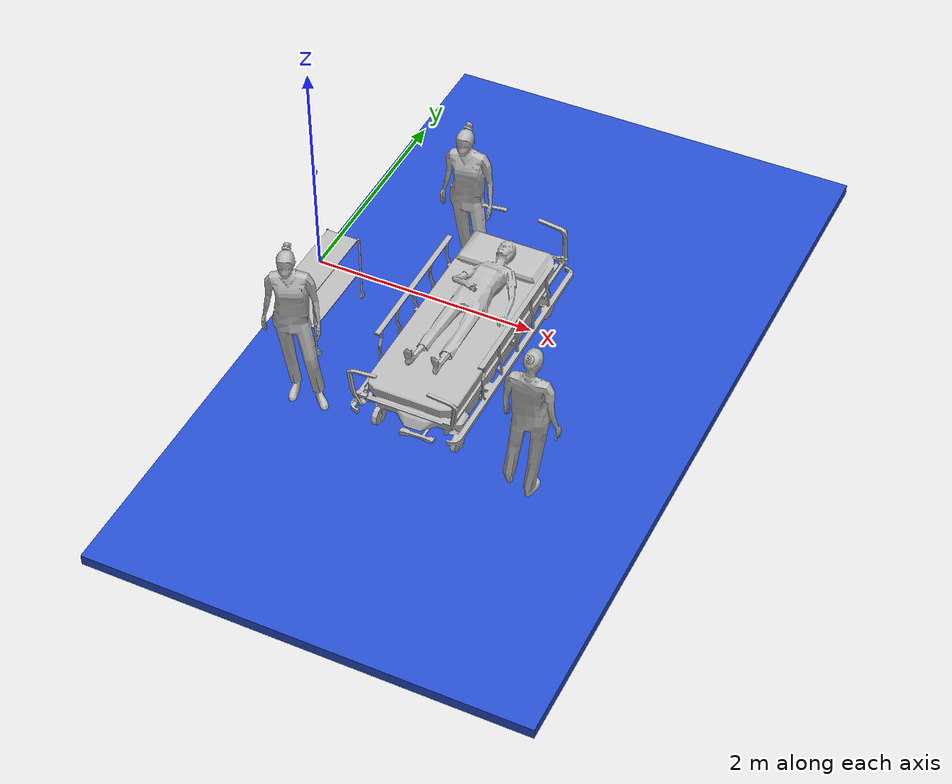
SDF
<sdf version="1.5">
 <world name="world">
  <gravity>0 0 -9.8</gravity>
  <physics name="default_physics" default="0" type="rk4">
   <max_step_size>0.001</max_step_size>
   <real_time_factor>1</real_time_factor>
   <real_time_update_rate>1000</real_time_update_rate>
   <ode>
    <solver>
     <type>quick</type>
     <precon>none</precon>
     <iters>50</iters>
     <sor>1.3</sor>
     <use_dynamic_moi_rescaling>0</use_dynamic_moi_rescaling>
     <friction_model>pyramid_model</friction_model>
     <constraints>
      <cfm>0.0</cfm>
      <erp>0.2</erp>
      <contact_max_correcting_vel>100.0</contact_max_correcting_vel>
      <contact_surface_layer>0.001</contact_surface_layer>
     </constraints>
     <solver>
      <type>quick</type>
      <precon>none</precon>
      <iters>50</iters>
      <sor>1.3</sor>
      <use_dynamic_moi_rescaling>0</use_dynamic_moi_rescaling>
      <friction_model>pyramid_model</friction_model>
      <constraints>
       <cfm>0.0</cfm>
       <erp>0.2</erp>
       <contact_max_correcting_vel>100.0</contact_max_correcting_vel>
       <contact_surface_layer>0.001</contact_surface_layer>
      </constraints>
     </solver>
     <solver_type>2</solver_type>
     <min_step_size>0.0001</min_step_size>
     <max_step_size>0.001</max_step_size>
     <step_size>0.001</step_size>
     <damping>1</damping>
     <implicit_spring_damper>0</implicit_spring_damper>
     <preprocess_ccd>0</preprocess_ccd>
     <friction_cfm>0.0</friction_cfm>
     <friction_erp>0.2</friction_erp>
     <sor_eps>0.1</sor_eps>
     <sor_iterations>20</sor_iterations>
     <max_contacts>20</max_contacts>
     <surface_layer_width>0.001</surface_layer_width>
     <contact_max_correcting_vel>100.0</contact_max_correcting_vel>
    </solver>
   </ode>
  </physics>
  <scene><ambient>0.6 0.6 0.6 1</ambient><background>0.4 0.4 0.4 1</background><shadows>false</shadows></scene>
  <include><uri>model://sun</uri></include>
  <model name="TrolleyBedPatient_1">
   <include>
    <uri>model://TrolleyBedPatient</uri>
    <static>true</static>
    <pose>1.38202 0.0112 -0.7 0 -0 0</pose>
   </include>
  </model>
  <model name="Scrubs_6">
   <include><uri>model://Scrubs</uri><static>true</static><pose>0.84468 1.1593 -0.7 0 0 -1.51066</pose></include>
  </model>
  <model name="Scrubs_5">
   <include>
    <uri>model://Scrubs</uri>
    <static>true</static>
    <pose>0.21657 -0.8833 -0.7 -0.002221 -0.006608 -1.24025</pose>
   </include>
  </model>
  <model name="Scrubs_4">
   <include>
    <uri>model://Scrubs</uri>
    <static>true</static>
    <pose>2.48616 -1.0352 -0.7 0 -0 1.62572</pose>
   </include>
  </model>
  <model name="SurgicalTrolley_2">
   <include><uri>model://SurgicalTrolley</uri><static>true</static><pose>0 0 -0.71 0 0 -1.58175</pose></include>
  </model>
  <model name="floor">
   <static>true</static>
   <link name="floor_link">
    <collision name="floor_collision">
     <geometry><box><size>4 7 0.1</size></box></geometry>
     <pose>1.55 0.25 -0.75 0 0 0</pose>
    </collision>
    <visual name="floor_visual">
     <geometry><box><size>4 7 0.1</size></box></geometry>
     <pose>1.55 0.25 -0.75 0 0 0</pose>
     <material>
      <script><uri>file://media/materials/scripts/gazebo.material</uri><name>Gazebo/Blue</name></script>
     </material>
    </visual>
   </link>
  </model>
  <model name="target_sphere">
   <pose>0 0 1 0 0 0</pose>
   <link name="link">
    <gravity>false</gravity>
    <visual name="visual">
     <geometry><sphere><radius>0.03</radius></sphere></geometry>
     <material>
      <script><uri>file://media/materials/scripts/gazebo.material</uri><name>Gazebo/Blue</name></script>
     </material>
    </visual>
   </link>
  </model>
 </world>
</sdf>

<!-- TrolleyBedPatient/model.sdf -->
<sdf version="1.6">
  <model name="TrolleyBedPatient">
   <static>true</static>
    <link name="body">
      <pose>0 0 0 0 0 0</pose>

      <visual name="visual">
        <geometry>
          <mesh>
            <uri>model://TrolleyBedPatient/meshes/TrolleyBedPatient.obj</uri>
          </mesh>
        </geometry>
      </visual>

    </link>
  </model>
</sdf>

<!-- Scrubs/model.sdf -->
<sdf version="1.6">
  <model name='Scrubs'>
   <static>true</static>
    <link name="body">
      <pose>0 0 0 0 0 0</pose>

      <visual name="visual">
        <geometry>
          <mesh>
            <uri>model://Scrubs/meshes/scrubs.obj</uri>
          </mesh>
        </geometry>
      </visual>

      <collision name="collision">
        <geometry>
          <mesh>
            <uri>model://Scrubs/meshes/Scrubs_Col.obj</uri>
          </mesh>
        </geometry>
      </collision>

    </link>
  </model>
</sdf>

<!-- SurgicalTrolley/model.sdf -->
<sdf version="1.6">
  <model name='SurgicalTrolley'>
   <static>true</static>
    <link name="body">
      <pose>0 0 0 0 0 0</pose>

      <visual name="visual">
        <geometry>
          <mesh>
            <uri>model://SurgicalTrolley/meshes/trolley.obj</uri>
          </mesh>
        </geometry>
      </visual>

    </link>
  </model>
</sdf>
